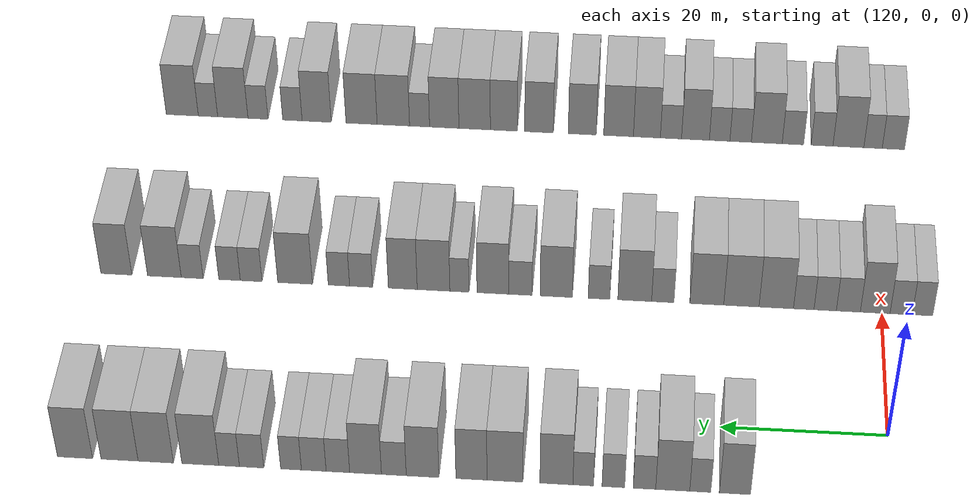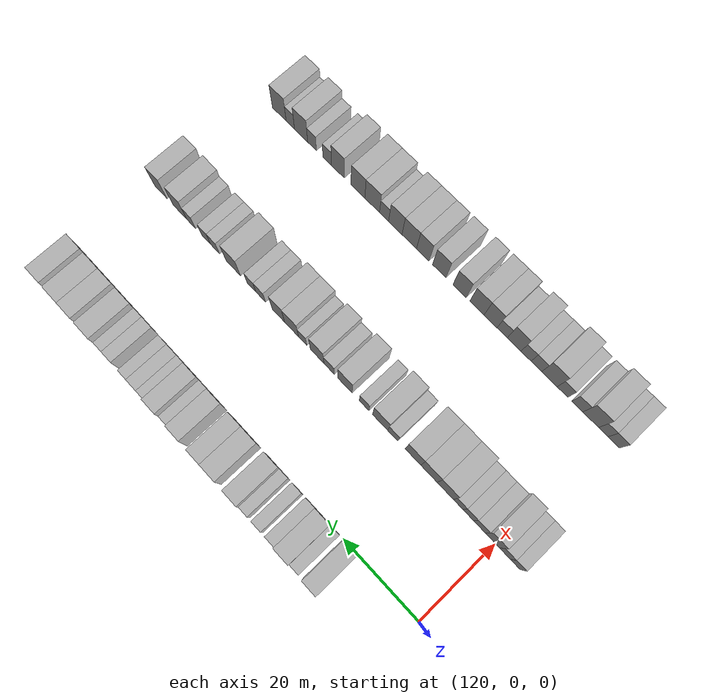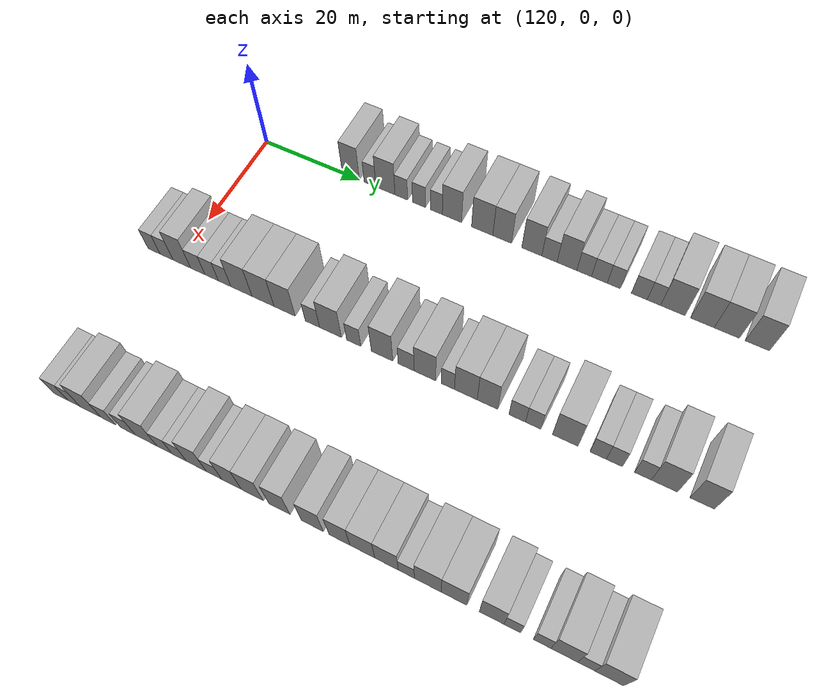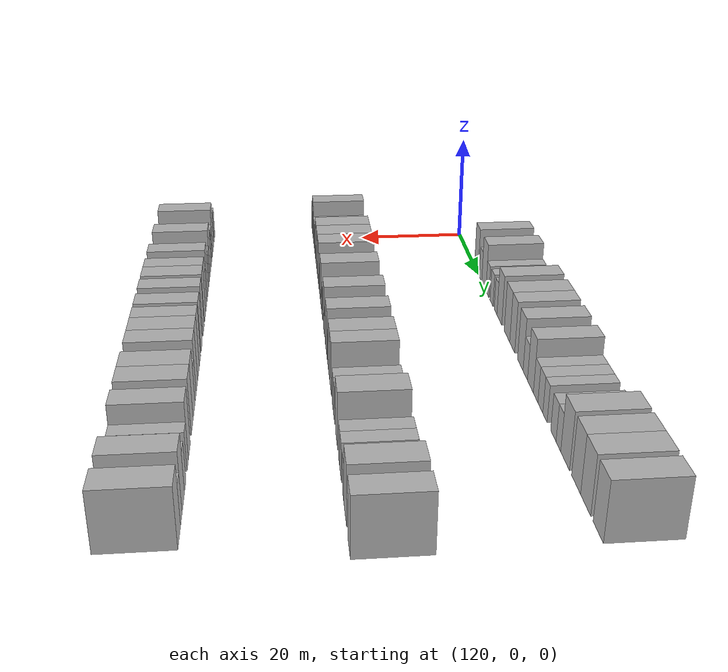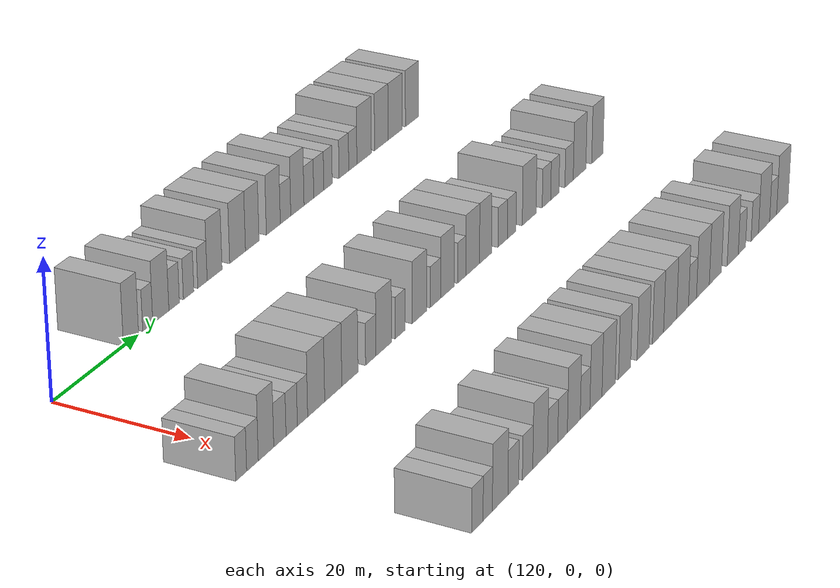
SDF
<sdf version="1.6">
 <world name="default">
  <model name="building_769">
   <static>1</static>
   <pose>115.0000 18.1627 0 0.000000 0.000000 0.000000</pose>
   <link name="link">
    <pose>0 0 4.50 0 0 0</pose>
    <collision name="collision"><geometry><box><size>10.0000 3.6325 9.0000</size></box></geometry></collision>
    <visual name="visual">
     <cast_shadows>0</cast_shadows>
     <geometry><box><size>10.0000 3.6325 9.0000</size></box></geometry>
     <material>
      <script>
       <uri>model://HANNAS_wall/materials/scripts</uri>
       <uri>model://HANNAS_wall/materials/textures</uri>
       <name>vrc/HANNAS_wall</name>
      </script>
     </material>
    </visual>
   </link>
  </model>
  <model name="building_770">
   <static>1</static>
   <pose>115.0000 22.2066 0 0.000000 0.000000 0.000000</pose>
   <link name="link">
    <pose>0 0 3.00 0 0 0</pose>
    <collision name="collision"><geometry><box><size>10.0000 2.4553 6.0000</size></box></geometry></collision>
    <visual name="visual">
     <cast_shadows>0</cast_shadows>
     <geometry><box><size>10.0000 2.4553 6.0000</size></box></geometry>
     <material>
      <script>
       <uri>model://HANNAS_wall/materials/scripts</uri>
       <uri>model://HANNAS_wall/materials/textures</uri>
       <name>vrc/HANNAS_wall</name>
      </script>
     </material>
    </visual>
   </link>
  </model>
  <model name="building_771">
   <static>1</static>
   <pose>115.0000 25.4216 0 0.000000 0.000000 0.000000</pose>
   <link name="link">
    <pose>0 0 4.50 0 0 0</pose>
    <collision name="collision"><geometry><box><size>10.0000 3.9746 9.0000</size></box></geometry></collision>
    <visual name="visual">
     <cast_shadows>0</cast_shadows>
     <geometry><box><size>10.0000 3.9746 9.0000</size></box></geometry>
     <material>
      <script>
       <uri>model://HANNAS_wall/materials/scripts</uri>
       <uri>model://HANNAS_wall/materials/textures</uri>
       <name>vrc/HANNAS_wall</name>
      </script>
     </material>
    </visual>
   </link>
  </model>
  <model name="building_772">
   <static>1</static>
   <pose>115.0000 28.7210 0 0.000000 0.000000 0.000000</pose>
   <link name="link">
    <pose>0 0 3.00 0 0 0</pose>
    <collision name="collision"><geometry><box><size>10.0000 2.6242 6.0000</size></box></geometry></collision>
    <visual name="visual">
     <cast_shadows>0</cast_shadows>
     <geometry><box><size>10.0000 2.6242 6.0000</size></box></geometry>
     <material>
      <script>
       <uri>model://HANNAS_wall/materials/scripts</uri>
       <uri>model://HANNAS_wall/materials/textures</uri>
       <name>vrc/HANNAS_wall</name>
      </script>
     </material>
    </visual>
   </link>
  </model>
  <model name="building_773">
   <static>1</static>
   <pose>115.0000 32.3608 0 0.000000 0.000000 0.000000</pose>
   <link name="link">
    <pose>0 0 3.00 0 0 0</pose>
    <collision name="collision"><geometry><box><size>10.0000 2.6553 6.0000</size></box></geometry></collision>
    <visual name="visual">
     <cast_shadows>0</cast_shadows>
     <geometry><box><size>10.0000 2.6553 6.0000</size></box></geometry>
     <material>
      <script>
       <uri>model://HANNAS_wall/materials/scripts</uri>
       <uri>model://HANNAS_wall/materials/textures</uri>
       <name>vrc/HANNAS_wall</name>
      </script>
     </material>
    </visual>
   </link>
  </model>
  <model name="building_774">
   <static>1</static>
   <pose>115.0000 35.8933 0 0.000000 0.000000 0.000000</pose>
   <link name="link">
    <pose>0 0 3.00 0 0 0</pose>
    <collision name="collision"><geometry><box><size>10.0000 2.4097 6.0000</size></box></geometry></collision>
    <visual name="visual">
     <cast_shadows>0</cast_shadows>
     <geometry><box><size>10.0000 2.4097 6.0000</size></box></geometry>
     <material>
      <script>
       <uri>model://HANNAS_wall/materials/scripts</uri>
       <uri>model://HANNAS_wall/materials/textures</uri>
       <name>vrc/HANNAS_wall</name>
      </script>
     </material>
    </visual>
   </link>
  </model>
  <model name="building_775">
   <static>1</static>
   <pose>115.0000 39.0389 0 0.000000 0.000000 0.000000</pose>
   <link name="link">
    <pose>0 0 4.50 0 0 0</pose>
    <collision name="collision"><geometry><box><size>10.0000 3.8815 9.0000</size></box></geometry></collision>
    <visual name="visual">
     <cast_shadows>0</cast_shadows>
     <geometry><box><size>10.0000 3.8815 9.0000</size></box></geometry>
     <material>
      <script>
       <uri>model://HANNAS_wall/materials/scripts</uri>
       <uri>model://HANNAS_wall/materials/textures</uri>
       <name>vrc/HANNAS_wall</name>
      </script>
     </material>
    </visual>
   </link>
  </model>
  <model name="building_776">
   <static>1</static>
   <pose>115.0000 45.0874 0 0.000000 0.000000 0.000000</pose>
   <link name="link">
    <pose>0 0 4.50 0 0 0</pose>
    <collision name="collision"><geometry><box><size>10.0000 4.2157 9.0000</size></box></geometry></collision>
    <visual name="visual">
     <cast_shadows>0</cast_shadows>
     <geometry><box><size>10.0000 4.2157 9.0000</size></box></geometry>
     <material>
      <script>
       <uri>model://HANNAS_wall/materials/scripts</uri>
       <uri>model://HANNAS_wall/materials/textures</uri>
       <name>vrc/HANNAS_wall</name>
      </script>
     </material>
    </visual>
   </link>
  </model>
  <model name="building_777">
   <static>1</static>
   <pose>115.0000 49.0259 0 0.000000 0.000000 0.000000</pose>
   <link name="link">
    <pose>0 0 4.50 0 0 0</pose>
    <collision name="collision"><geometry><box><size>10.0000 3.6612 9.0000</size></box></geometry></collision>
    <visual name="visual">
     <cast_shadows>0</cast_shadows>
     <geometry><box><size>10.0000 3.6612 9.0000</size></box></geometry>
     <material>
      <script>
       <uri>model://HANNAS_wall/materials/scripts</uri>
       <uri>model://HANNAS_wall/materials/textures</uri>
       <name>vrc/HANNAS_wall</name>
      </script>
     </material>
    </visual>
   </link>
  </model>
  <model name="building_778">
   <static>1</static>
   <pose>115.0000 54.7851 0 0.000000 0.000000 0.000000</pose>
   <link name="link">
    <pose>0 0 4.50 0 0 0</pose>
    <collision name="collision"><geometry><box><size>10.0000 3.8573 9.0000</size></box></geometry></collision>
    <visual name="visual">
     <cast_shadows>0</cast_shadows>
     <geometry><box><size>10.0000 3.8573 9.0000</size></box></geometry>
     <material>
      <script>
       <uri>model://HANNAS_wall/materials/scripts</uri>
       <uri>model://HANNAS_wall/materials/textures</uri>
       <name>vrc/HANNAS_wall</name>
      </script>
     </material>
    </visual>
   </link>
  </model>
  <model name="building_779">
   <static>1</static>
   <pose>115.0000 58.1775 0 0.000000 0.000000 0.000000</pose>
   <link name="link">
    <pose>0 0 3.00 0 0 0</pose>
    <collision name="collision"><geometry><box><size>10.0000 2.9275 6.0000</size></box></geometry></collision>
    <visual name="visual">
     <cast_shadows>0</cast_shadows>
     <geometry><box><size>10.0000 2.9275 6.0000</size></box></geometry>
     <material>
      <script>
       <uri>model://HANNAS_wall/materials/scripts</uri>
       <uri>model://HANNAS_wall/materials/textures</uri>
       <name>vrc/HANNAS_wall</name>
      </script>
     </material>
    </visual>
   </link>
  </model>
  <model name="building_780">
   <static>1</static>
   <pose>115.0000 61.5200 0 0.000000 0.000000 0.000000</pose>
   <link name="link">
    <pose>0 0 4.50 0 0 0</pose>
    <collision name="collision"><geometry><box><size>10.0000 3.7576 9.0000</size></box></geometry></collision>
    <visual name="visual">
     <cast_shadows>0</cast_shadows>
     <geometry><box><size>10.0000 3.7576 9.0000</size></box></geometry>
     <material>
      <script>
       <uri>model://HANNAS_wall/materials/scripts</uri>
       <uri>model://HANNAS_wall/materials/textures</uri>
       <name>vrc/HANNAS_wall</name>
      </script>
     </material>
    </visual>
   </link>
  </model>
  <model name="building_781">
   <static>1</static>
   <pose>115.0000 64.7912 0 0.000000 0.000000 0.000000</pose>
   <link name="link">
    <pose>0 0 3.00 0 0 0</pose>
    <collision name="collision"><geometry><box><size>10.0000 2.7848 6.0000</size></box></geometry></collision>
    <visual name="visual">
     <cast_shadows>0</cast_shadows>
     <geometry><box><size>10.0000 2.7848 6.0000</size></box></geometry>
     <material>
      <script>
       <uri>model://HANNAS_wall/materials/scripts</uri>
       <uri>model://HANNAS_wall/materials/textures</uri>
       <name>vrc/HANNAS_wall</name>
      </script>
     </material>
    </visual>
   </link>
  </model>
  <model name="building_782">
   <static>1</static>
   <pose>115.0000 67.6475 0 0.000000 0.000000 0.000000</pose>
   <link name="link">
    <pose>0 0 3.00 0 0 0</pose>
    <collision name="collision"><geometry><box><size>10.0000 2.9278 6.0000</size></box></geometry></collision>
    <visual name="visual">
     <cast_shadows>0</cast_shadows>
     <geometry><box><size>10.0000 2.9278 6.0000</size></box></geometry>
     <material>
      <script>
       <uri>model://HANNAS_wall/materials/scripts</uri>
       <uri>model://HANNAS_wall/materials/textures</uri>
       <name>vrc/HANNAS_wall</name>
      </script>
     </material>
    </visual>
   </link>
  </model>
  <model name="building_783">
   <static>1</static>
   <pose>115.0000 70.3425 0 0.000000 0.000000 0.000000</pose>
   <link name="link">
    <pose>0 0 3.00 0 0 0</pose>
    <collision name="collision"><geometry><box><size>10.0000 2.4622 6.0000</size></box></geometry></collision>
    <visual name="visual">
     <cast_shadows>0</cast_shadows>
     <geometry><box><size>10.0000 2.4622 6.0000</size></box></geometry>
     <material>
      <script>
       <uri>model://HANNAS_wall/materials/scripts</uri>
       <uri>model://HANNAS_wall/materials/textures</uri>
       <name>vrc/HANNAS_wall</name>
      </script>
     </material>
    </visual>
   </link>
  </model>
  <model name="building_784">
   <static>1</static>
   <pose>115.0000 75.0218 0 0.000000 0.000000 0.000000</pose>
   <link name="link">
    <pose>0 0 3.00 0 0 0</pose>
    <collision name="collision"><geometry><box><size>10.0000 2.8963 6.0000</size></box></geometry></collision>
    <visual name="visual">
     <cast_shadows>0</cast_shadows>
     <geometry><box><size>10.0000 2.8963 6.0000</size></box></geometry>
     <material>
      <script>
       <uri>model://HANNAS_wall/materials/scripts</uri>
       <uri>model://HANNAS_wall/materials/textures</uri>
       <name>vrc/HANNAS_wall</name>
      </script>
     </material>
    </visual>
   </link>
  </model>
  <model name="building_785">
   <static>1</static>
   <pose>115.0000 77.6968 0 0.000000 0.000000 0.000000</pose>
   <link name="link">
    <pose>0 0 3.00 0 0 0</pose>
    <collision name="collision"><geometry><box><size>10.0000 2.4537 6.0000</size></box></geometry></collision>
    <visual name="visual">
     <cast_shadows>0</cast_shadows>
     <geometry><box><size>10.0000 2.4537 6.0000</size></box></geometry>
     <material>
      <script>
       <uri>model://HANNAS_wall/materials/scripts</uri>
       <uri>model://HANNAS_wall/materials/textures</uri>
       <name>vrc/HANNAS_wall</name>
      </script>
     </material>
    </visual>
   </link>
  </model>
  <model name="building_786">
   <static>1</static>
   <pose>115.0000 81.1252 0 0.000000 0.000000 0.000000</pose>
   <link name="link">
    <pose>0 0 4.50 0 0 0</pose>
    <collision name="collision"><geometry><box><size>10.0000 4.4030 9.0000</size></box></geometry></collision>
    <visual name="visual">
     <cast_shadows>0</cast_shadows>
     <geometry><box><size>10.0000 4.4030 9.0000</size></box></geometry>
     <material>
      <script>
       <uri>model://HANNAS_wall/materials/scripts</uri>
       <uri>model://HANNAS_wall/materials/textures</uri>
       <name>vrc/HANNAS_wall</name>
      </script>
     </material>
    </visual>
   </link>
  </model>
  <model name="building_787">
   <static>1</static>
   <pose>115.0000 86.4268 0 0.000000 0.000000 0.000000</pose>
   <link name="link">
    <pose>0 0 4.50 0 0 0</pose>
    <collision name="collision"><geometry><box><size>10.0000 4.2002 9.0000</size></box></geometry></collision>
    <visual name="visual">
     <cast_shadows>0</cast_shadows>
     <geometry><box><size>10.0000 4.2002 9.0000</size></box></geometry>
     <material>
      <script>
       <uri>model://HANNAS_wall/materials/scripts</uri>
       <uri>model://HANNAS_wall/materials/textures</uri>
       <name>vrc/HANNAS_wall</name>
      </script>
     </material>
    </visual>
   </link>
  </model>
  <model name="building_788">
   <static>1</static>
   <pose>115.0000 90.7463 0 0.000000 0.000000 0.000000</pose>
   <link name="link">
    <pose>0 0 4.50 0 0 0</pose>
    <collision name="collision"><geometry><box><size>10.0000 4.4389 9.0000</size></box></geometry></collision>
    <visual name="visual">
     <cast_shadows>0</cast_shadows>
     <geometry><box><size>10.0000 4.4389 9.0000</size></box></geometry>
     <material>
      <script>
       <uri>model://HANNAS_wall/materials/scripts</uri>
       <uri>model://HANNAS_wall/materials/textures</uri>
       <name>vrc/HANNAS_wall</name>
      </script>
     </material>
    </visual>
   </link>
  </model>
  <model name="building_789">
   <static>1</static>
   <pose>115.0000 96.0690 0 0.000000 0.000000 0.000000</pose>
   <link name="link">
    <pose>0 0 4.50 0 0 0</pose>
    <collision name="collision"><geometry><box><size>10.0000 4.2064 9.0000</size></box></geometry></collision>
    <visual name="visual">
     <cast_shadows>0</cast_shadows>
     <geometry><box><size>10.0000 4.2064 9.0000</size></box></geometry>
     <material>
      <script>
       <uri>model://HANNAS_wall/materials/scripts</uri>
       <uri>model://HANNAS_wall/materials/textures</uri>
       <name>vrc/HANNAS_wall</name>
      </script>
     </material>
    </visual>
   </link>
  </model>
  <model name="building_988">
   <static>1</static>
   <pose>145.0000 -5.0120 0 0.000000 0.000000 0.000000</pose>
   <link name="link">
    <pose>0 0 3.00 0 0 0</pose>
    <collision name="collision"><geometry><box><size>10.0000 2.5495 6.0000</size></box></geometry></collision>
    <visual name="visual">
     <cast_shadows>0</cast_shadows>
     <geometry><box><size>10.0000 2.5495 6.0000</size></box></geometry>
     <material>
      <script>
       <uri>model://HANNAS_wall/materials/scripts</uri>
       <uri>model://HANNAS_wall/materials/textures</uri>
       <name>vrc/HANNAS_wall</name>
      </script>
     </material>
    </visual>
   </link>
  </model>
  <model name="building_989">
   <static>1</static>
   <pose>145.0000 -2.3616 0 0.000000 0.000000 0.000000</pose>
   <link name="link">
    <pose>0 0 3.00 0 0 0</pose>
    <collision name="collision"><geometry><box><size>10.0000 2.7514 6.0000</size></box></geometry></collision>
    <visual name="visual">
     <cast_shadows>0</cast_shadows>
     <geometry><box><size>10.0000 2.7514 6.0000</size></box></geometry>
     <material>
      <script>
       <uri>model://HANNAS_wall/materials/scripts</uri>
       <uri>model://HANNAS_wall/materials/textures</uri>
       <name>vrc/HANNAS_wall</name>
      </script>
     </material>
    </visual>
   </link>
  </model>
  <model name="building_990">
   <static>1</static>
   <pose>145.0000 0.8616 0 0.000000 0.000000 0.000000</pose>
   <link name="link">
    <pose>0 0 4.50 0 0 0</pose>
    <collision name="collision"><geometry><box><size>10.0000 3.6948 9.0000</size></box></geometry></collision>
    <visual name="visual">
     <cast_shadows>0</cast_shadows>
     <geometry><box><size>10.0000 3.6948 9.0000</size></box></geometry>
     <material>
      <script>
       <uri>model://HANNAS_wall/materials/scripts</uri>
       <uri>model://HANNAS_wall/materials/textures</uri>
       <name>vrc/HANNAS_wall</name>
      </script>
     </material>
    </visual>
   </link>
  </model>
  <model name="building_991">
   <static>1</static>
   <pose>145.0000 4.2015 0 0.000000 0.000000 0.000000</pose>
   <link name="link">
    <pose>0 0 3.00 0 0 0</pose>
    <collision name="collision"><geometry><box><size>10.0000 2.9850 6.0000</size></box></geometry></collision>
    <visual name="visual">
     <cast_shadows>0</cast_shadows>
     <geometry><box><size>10.0000 2.9850 6.0000</size></box></geometry>
     <material>
      <script>
       <uri>model://HANNAS_wall/materials/scripts</uri>
       <uri>model://HANNAS_wall/materials/textures</uri>
       <name>vrc/HANNAS_wall</name>
      </script>
     </material>
    </visual>
   </link>
  </model>
  <model name="building_992">
   <static>1</static>
   <pose>145.0000 7.0868 0 0.000000 0.000000 0.000000</pose>
   <link name="link">
    <pose>0 0 3.00 0 0 0</pose>
    <collision name="collision"><geometry><box><size>10.0000 2.7858 6.0000</size></box></geometry></collision>
    <visual name="visual">
     <cast_shadows>0</cast_shadows>
     <geometry><box><size>10.0000 2.7858 6.0000</size></box></geometry>
     <material>
      <script>
       <uri>model://HANNAS_wall/materials/scripts</uri>
       <uri>model://HANNAS_wall/materials/textures</uri>
       <name>vrc/HANNAS_wall</name>
      </script>
     </material>
    </visual>
   </link>
  </model>
  <model name="building_993">
   <static>1</static>
   <pose>145.0000 9.7575 0 0.000000 0.000000 0.000000</pose>
   <link name="link">
    <pose>0 0 3.00 0 0 0</pose>
    <collision name="collision"><geometry><box><size>10.0000 2.5555 6.0000</size></box></geometry></collision>
    <visual name="visual">
     <cast_shadows>0</cast_shadows>
     <geometry><box><size>10.0000 2.5555 6.0000</size></box></geometry>
     <material>
      <script>
       <uri>model://HANNAS_wall/materials/scripts</uri>
       <uri>model://HANNAS_wall/materials/textures</uri>
       <name>vrc/HANNAS_wall</name>
      </script>
     </material>
    </visual>
   </link>
  </model>
  <model name="building_994">
   <static>1</static>
   <pose>145.0000 13.1866 0 0.000000 0.000000 0.000000</pose>
   <link name="link">
    <pose>0 0 4.50 0 0 0</pose>
    <collision name="collision"><geometry><box><size>10.0000 4.3028 9.0000</size></box></geometry></collision>
    <visual name="visual">
     <cast_shadows>0</cast_shadows>
     <geometry><box><size>10.0000 4.3028 9.0000</size></box></geometry>
     <material>
      <script>
       <uri>model://HANNAS_wall/materials/scripts</uri>
       <uri>model://HANNAS_wall/materials/textures</uri>
       <name>vrc/HANNAS_wall</name>
      </script>
     </material>
    </visual>
   </link>
  </model>
  <model name="building_995">
   <static>1</static>
   <pose>145.0000 17.5423 0 0.000000 0.000000 0.000000</pose>
   <link name="link">
    <pose>0 0 4.50 0 0 0</pose>
    <collision name="collision"><geometry><box><size>10.0000 4.4086 9.0000</size></box></geometry></collision>
    <visual name="visual">
     <cast_shadows>0</cast_shadows>
     <geometry><box><size>10.0000 4.4086 9.0000</size></box></geometry>
     <material>
      <script>
       <uri>model://HANNAS_wall/materials/scripts</uri>
       <uri>model://HANNAS_wall/materials/textures</uri>
       <name>vrc/HANNAS_wall</name>
      </script>
     </material>
    </visual>
   </link>
  </model>
  <model name="building_996">
   <static>1</static>
   <pose>145.0000 21.8609 0 0.000000 0.000000 0.000000</pose>
   <link name="link">
    <pose>0 0 4.50 0 0 0</pose>
    <collision name="collision"><geometry><box><size>10.0000 4.2285 9.0000</size></box></geometry></collision>
    <visual name="visual">
     <cast_shadows>0</cast_shadows>
     <geometry><box><size>10.0000 4.2285 9.0000</size></box></geometry>
     <material>
      <script>
       <uri>model://HANNAS_wall/materials/scripts</uri>
       <uri>model://HANNAS_wall/materials/textures</uri>
       <name>vrc/HANNAS_wall</name>
      </script>
     </material>
    </visual>
   </link>
  </model>
  <model name="building_997">
   <static>1</static>
   <pose>145.0000 27.3735 0 0.000000 0.000000 0.000000</pose>
   <link name="link">
    <pose>0 0 3.00 0 0 0</pose>
    <collision name="collision"><geometry><box><size>10.0000 2.7969 6.0000</size></box></geometry></collision>
    <visual name="visual">
     <cast_shadows>0</cast_shadows>
     <geometry><box><size>10.0000 2.7969 6.0000</size></box></geometry>
     <material>
      <script>
       <uri>model://HANNAS_wall/materials/scripts</uri>
       <uri>model://HANNAS_wall/materials/textures</uri>
       <name>vrc/HANNAS_wall</name>
      </script>
     </material>
    </visual>
   </link>
  </model>
  <model name="building_998">
   <static>1</static>
   <pose>145.0000 30.8922 0 0.000000 0.000000 0.000000</pose>
   <link name="link">
    <pose>0 0 4.50 0 0 0</pose>
    <collision name="collision"><geometry><box><size>10.0000 4.2404 9.0000</size></box></geometry></collision>
    <visual name="visual">
     <cast_shadows>0</cast_shadows>
     <geometry><box><size>10.0000 4.2404 9.0000</size></box></geometry>
     <material>
      <script>
       <uri>model://HANNAS_wall/materials/scripts</uri>
       <uri>model://HANNAS_wall/materials/textures</uri>
       <name>vrc/HANNAS_wall</name>
      </script>
     </material>
    </visual>
   </link>
  </model>
  <model name="building_999">
   <static>1</static>
   <pose>145.0000 35.3696 0 0.000000 0.000000 0.000000</pose>
   <link name="link">
    <pose>0 0 3.00 0 0 0</pose>
    <collision name="collision"><geometry><box><size>10.0000 2.7144 6.0000</size></box></geometry></collision>
    <visual name="visual">
     <cast_shadows>0</cast_shadows>
     <geometry><box><size>10.0000 2.7144 6.0000</size></box></geometry>
     <material>
      <script>
       <uri>model://HANNAS_wall/materials/scripts</uri>
       <uri>model://HANNAS_wall/materials/textures</uri>
       <name>vrc/HANNAS_wall</name>
      </script>
     </material>
    </visual>
   </link>
  </model>
  <model name="building_1000">
   <static>1</static>
   <pose>145.0000 40.7565 0 0.000000 0.000000 0.000000</pose>
   <link name="link">
    <pose>0 0 4.50 0 0 0</pose>
    <collision name="collision"><geometry><box><size>10.0000 4.0594 9.0000</size></box></geometry></collision>
    <visual name="visual">
     <cast_shadows>0</cast_shadows>
     <geometry><box><size>10.0000 4.0594 9.0000</size></box></geometry>
     <material>
      <script>
       <uri>model://HANNAS_wall/materials/scripts</uri>
       <uri>model://HANNAS_wall/materials/textures</uri>
       <name>vrc/HANNAS_wall</name>
      </script>
     </material>
    </visual>
   </link>
  </model>
  <model name="building_1001">
   <static>1</static>
   <pose>145.0000 45.2806 0 0.000000 0.000000 0.000000</pose>
   <link name="link">
    <pose>0 0 3.00 0 0 0</pose>
    <collision name="collision"><geometry><box><size>10.0000 2.9886 6.0000</size></box></geometry></collision>
    <visual name="visual">
     <cast_shadows>0</cast_shadows>
     <geometry><box><size>10.0000 2.9886 6.0000</size></box></geometry>
     <material>
      <script>
       <uri>model://HANNAS_wall/materials/scripts</uri>
       <uri>model://HANNAS_wall/materials/textures</uri>
       <name>vrc/HANNAS_wall</name>
      </script>
     </material>
    </visual>
   </link>
  </model>
  <model name="building_1002">
   <static>1</static>
   <pose>145.0000 48.7623 0 0.000000 0.000000 0.000000</pose>
   <link name="link">
    <pose>0 0 4.50 0 0 0</pose>
    <collision name="collision"><geometry><box><size>10.0000 3.9747 9.0000</size></box></geometry></collision>
    <visual name="visual">
     <cast_shadows>0</cast_shadows>
     <geometry><box><size>10.0000 3.9747 9.0000</size></box></geometry>
     <material>
      <script>
       <uri>model://HANNAS_wall/materials/scripts</uri>
       <uri>model://HANNAS_wall/materials/textures</uri>
       <name>vrc/HANNAS_wall</name>
      </script>
     </material>
    </visual>
   </link>
  </model>
  <model name="building_1003">
   <static>1</static>
   <pose>145.0000 52.9579 0 0.000000 0.000000 0.000000</pose>
   <link name="link">
    <pose>0 0 3.00 0 0 0</pose>
    <collision name="collision"><geometry><box><size>10.0000 2.4165 6.0000</size></box></geometry></collision>
    <visual name="visual">
     <cast_shadows>0</cast_shadows>
     <geometry><box><size>10.0000 2.4165 6.0000</size></box></geometry>
     <material>
      <script>
       <uri>model://HANNAS_wall/materials/scripts</uri>
       <uri>model://HANNAS_wall/materials/textures</uri>
       <name>vrc/HANNAS_wall</name>
      </script>
     </material>
    </visual>
   </link>
  </model>
  <model name="building_1004">
   <static>1</static>
   <pose>145.0000 56.2292 0 0.000000 0.000000 0.000000</pose>
   <link name="link">
    <pose>0 0 4.50 0 0 0</pose>
    <collision name="collision"><geometry><box><size>10.0000 4.1262 9.0000</size></box></geometry></collision>
    <visual name="visual">
     <cast_shadows>0</cast_shadows>
     <geometry><box><size>10.0000 4.1262 9.0000</size></box></geometry>
     <material>
      <script>
       <uri>model://HANNAS_wall/materials/scripts</uri>
       <uri>model://HANNAS_wall/materials/textures</uri>
       <name>vrc/HANNAS_wall</name>
      </script>
     </material>
    </visual>
   </link>
  </model>
  <model name="building_1005">
   <static>1</static>
   <pose>145.0000 60.1215 0 0.000000 0.000000 0.000000</pose>
   <link name="link">
    <pose>0 0 4.50 0 0 0</pose>
    <collision name="collision"><geometry><box><size>10.0000 3.6584 9.0000</size></box></geometry></collision>
    <visual name="visual">
     <cast_shadows>0</cast_shadows>
     <geometry><box><size>10.0000 3.6584 9.0000</size></box></geometry>
     <material>
      <script>
       <uri>model://HANNAS_wall/materials/scripts</uri>
       <uri>model://HANNAS_wall/materials/textures</uri>
       <name>vrc/HANNAS_wall</name>
      </script>
     </material>
    </visual>
   </link>
  </model>
  <model name="building_1006">
   <static>1</static>
   <pose>145.0000 65.4102 0 0.000000 0.000000 0.000000</pose>
   <link name="link">
    <pose>0 0 3.00 0 0 0</pose>
    <collision name="collision"><geometry><box><size>10.0000 2.9189 6.0000</size></box></geometry></collision>
    <visual name="visual">
     <cast_shadows>0</cast_shadows>
     <geometry><box><size>10.0000 2.9189 6.0000</size></box></geometry>
     <material>
      <script>
       <uri>model://HANNAS_wall/materials/scripts</uri>
       <uri>model://HANNAS_wall/materials/textures</uri>
       <name>vrc/HANNAS_wall</name>
      </script>
     </material>
    </visual>
   </link>
  </model>
  <model name="building_1007">
   <static>1</static>
   <pose>145.0000 68.2216 0 0.000000 0.000000 0.000000</pose>
   <link name="link">
    <pose>0 0 3.00 0 0 0</pose>
    <collision name="collision"><geometry><box><size>10.0000 2.7040 6.0000</size></box></geometry></collision>
    <visual name="visual">
     <cast_shadows>0</cast_shadows>
     <geometry><box><size>10.0000 2.7040 6.0000</size></box></geometry>
     <material>
      <script>
       <uri>model://HANNAS_wall/materials/scripts</uri>
       <uri>model://HANNAS_wall/materials/textures</uri>
       <name>vrc/HANNAS_wall</name>
      </script>
     </material>
    </visual>
   </link>
  </model>
  <model name="building_1008">
   <static>1</static>
   <pose>145.0000 73.7834 0 0.000000 0.000000 0.000000</pose>
   <link name="link">
    <pose>0 0 4.50 0 0 0</pose>
    <collision name="collision"><geometry><box><size>10.0000 4.4194 9.0000</size></box></geometry></collision>
    <visual name="visual">
     <cast_shadows>0</cast_shadows>
     <geometry><box><size>10.0000 4.4194 9.0000</size></box></geometry>
     <material>
      <script>
       <uri>model://HANNAS_wall/materials/scripts</uri>
       <uri>model://HANNAS_wall/materials/textures</uri>
       <name>vrc/HANNAS_wall</name>
      </script>
     </material>
    </visual>
   </link>
  </model>
  <model name="building_1009">
   <static>1</static>
   <pose>145.0000 79.3778 0 0.000000 0.000000 0.000000</pose>
   <link name="link">
    <pose>0 0 3.00 0 0 0</pose>
    <collision name="collision"><geometry><box><size>10.0000 2.7694 6.0000</size></box></geometry></collision>
    <visual name="visual">
     <cast_shadows>0</cast_shadows>
     <geometry><box><size>10.0000 2.7694 6.0000</size></box></geometry>
     <material>
      <script>
       <uri>model://HANNAS_wall/materials/scripts</uri>
       <uri>model://HANNAS_wall/materials/textures</uri>
       <name>vrc/HANNAS_wall</name>
      </script>
     </material>
    </visual>
   </link>
  </model>
  <model name="building_1010">
   <static>1</static>
   <pose>145.0000 82.1313 0 0.000000 0.000000 0.000000</pose>
   <link name="link">
    <pose>0 0 3.00 0 0 0</pose>
    <collision name="collision"><geometry><box><size>10.0000 2.7377 6.0000</size></box></geometry></collision>
    <visual name="visual">
     <cast_shadows>0</cast_shadows>
     <geometry><box><size>10.0000 2.7377 6.0000</size></box></geometry>
     <material>
      <script>
       <uri>model://HANNAS_wall/materials/scripts</uri>
       <uri>model://HANNAS_wall/materials/textures</uri>
       <name>vrc/HANNAS_wall</name>
      </script>
     </material>
    </visual>
   </link>
  </model>
  <model name="building_1011">
   <static>1</static>
   <pose>145.0000 86.8977 0 0.000000 0.000000 0.000000</pose>
   <link name="link">
    <pose>0 0 3.00 0 0 0</pose>
    <collision name="collision"><geometry><box><size>10.0000 2.7953 6.0000</size></box></geometry></collision>
    <visual name="visual">
     <cast_shadows>0</cast_shadows>
     <geometry><box><size>10.0000 2.7953 6.0000</size></box></geometry>
     <material>
      <script>
       <uri>model://HANNAS_wall/materials/scripts</uri>
       <uri>model://HANNAS_wall/materials/textures</uri>
       <name>vrc/HANNAS_wall</name>
      </script>
     </material>
    </visual>
   </link>
  </model>
  <model name="building_1012">
   <static>1</static>
   <pose>145.0000 90.4505 0 0.000000 0.000000 0.000000</pose>
   <link name="link">
    <pose>0 0 4.50 0 0 0</pose>
    <collision name="collision"><geometry><box><size>10.0000 4.3102 9.0000</size></box></geometry></collision>
    <visual name="visual">
     <cast_shadows>0</cast_shadows>
     <geometry><box><size>10.0000 4.3102 9.0000</size></box></geometry>
     <material>
      <script>
       <uri>model://HANNAS_wall/materials/scripts</uri>
       <uri>model://HANNAS_wall/materials/textures</uri>
       <name>vrc/HANNAS_wall</name>
      </script>
     </material>
    </visual>
   </link>
  </model>
  <model name="building_1013">
   <static>1</static>
   <pose>145.0000 96.5925 0 0.000000 0.000000 0.000000</pose>
   <link name="link">
    <pose>0 0 4.50 0 0 0</pose>
    <collision name="collision"><geometry><box><size>10.0000 3.9738 9.0000</size></box></geometry></collision>
    <visual name="visual">
     <cast_shadows>0</cast_shadows>
     <geometry><box><size>10.0000 3.9738 9.0000</size></box></geometry>
     <material>
      <script>
       <uri>model://HANNAS_wall/materials/scripts</uri>
       <uri>model://HANNAS_wall/materials/textures</uri>
       <name>vrc/HANNAS_wall</name>
      </script>
     </material>
    </visual>
   </link>
  </model>
  <model name="building_1214">
   <static>1</static>
   <pose>175.0000 -2.5469 0 0.000000 0.000000 0.000000</pose>
   <link name="link">
    <pose>0 0 3.00 0 0 0</pose>
    <collision name="collision"><geometry><box><size>10.0000 2.9612 6.0000</size></box></geometry></collision>
    <visual name="visual">
     <cast_shadows>0</cast_shadows>
     <geometry><box><size>10.0000 2.9612 6.0000</size></box></geometry>
     <material>
      <script>
       <uri>model://HANNAS_wall/materials/scripts</uri>
       <uri>model://HANNAS_wall/materials/textures</uri>
       <name>vrc/HANNAS_wall</name>
      </script>
     </material>
    </visual>
   </link>
  </model>
  <model name="building_1215">
   <static>1</static>
   <pose>175.0000 0.1506 0 0.000000 0.000000 0.000000</pose>
   <link name="link">
    <pose>0 0 3.00 0 0 0</pose>
    <collision name="collision"><geometry><box><size>10.0000 2.4338 6.0000</size></box></geometry></collision>
    <visual name="visual">
     <cast_shadows>0</cast_shadows>
     <geometry><box><size>10.0000 2.4338 6.0000</size></box></geometry>
     <material>
      <script>
       <uri>model://HANNAS_wall/materials/scripts</uri>
       <uri>model://HANNAS_wall/materials/textures</uri>
       <name>vrc/HANNAS_wall</name>
      </script>
     </material>
    </visual>
   </link>
  </model>
  <model name="building_1216">
   <static>1</static>
   <pose>175.0000 3.4219 0 0.000000 0.000000 0.000000</pose>
   <link name="link">
    <pose>0 0 4.50 0 0 0</pose>
    <collision name="collision"><geometry><box><size>10.0000 4.1088 9.0000</size></box></geometry></collision>
    <visual name="visual">
     <cast_shadows>0</cast_shadows>
     <geometry><box><size>10.0000 4.1088 9.0000</size></box></geometry>
     <material>
      <script>
       <uri>model://HANNAS_wall/materials/scripts</uri>
       <uri>model://HANNAS_wall/materials/textures</uri>
       <name>vrc/HANNAS_wall</name>
      </script>
     </material>
    </visual>
   </link>
  </model>
  <model name="building_1217">
   <static>1</static>
   <pose>175.0000 6.9252 0 0.000000 0.000000 0.000000</pose>
   <link name="link">
    <pose>0 0 3.00 0 0 0</pose>
    <collision name="collision"><geometry><box><size>10.0000 2.8978 6.0000</size></box></geometry></collision>
    <visual name="visual">
     <cast_shadows>0</cast_shadows>
     <geometry><box><size>10.0000 2.8978 6.0000</size></box></geometry>
     <material>
      <script>
       <uri>model://HANNAS_wall/materials/scripts</uri>
       <uri>model://HANNAS_wall/materials/textures</uri>
       <name>vrc/HANNAS_wall</name>
      </script>
     </material>
    </visual>
   </link>
  </model>
  <model name="building_1218">
   <static>1</static>
   <pose>175.0000 10.8027 0 0.000000 0.000000 0.000000</pose>
   <link name="link">
    <pose>0 0 3.00 0 0 0</pose>
    <collision name="collision"><geometry><box><size>10.0000 2.8571 6.0000</size></box></geometry></collision>
    <visual name="visual">
     <cast_shadows>0</cast_shadows>
     <geometry><box><size>10.0000 2.8571 6.0000</size></box></geometry>
     <material>
      <script>
       <uri>model://HANNAS_wall/materials/scripts</uri>
       <uri>model://HANNAS_wall/materials/textures</uri>
       <name>vrc/HANNAS_wall</name>
      </script>
     </material>
    </visual>
   </link>
  </model>
  <model name="building_1219">
   <static>1</static>
   <pose>175.0000 14.2866 0 0.000000 0.000000 0.000000</pose>
   <link name="link">
    <pose>0 0 4.50 0 0 0</pose>
    <collision name="collision"><geometry><box><size>10.0000 4.1108 9.0000</size></box></geometry></collision>
    <visual name="visual">
     <cast_shadows>0</cast_shadows>
     <geometry><box><size>10.0000 4.1108 9.0000</size></box></geometry>
     <material>
      <script>
       <uri>model://HANNAS_wall/materials/scripts</uri>
       <uri>model://HANNAS_wall/materials/textures</uri>
       <name>vrc/HANNAS_wall</name>
      </script>
     </material>
    </visual>
   </link>
  </model>
  <model name="building_1220">
   <static>1</static>
   <pose>175.0000 17.7716 0 0.000000 0.000000 0.000000</pose>
   <link name="link">
    <pose>0 0 3.00 0 0 0</pose>
    <collision name="collision"><geometry><box><size>10.0000 2.8591 6.0000</size></box></geometry></collision>
    <visual name="visual">
     <cast_shadows>0</cast_shadows>
     <geometry><box><size>10.0000 2.8591 6.0000</size></box></geometry>
     <material>
      <script>
       <uri>model://HANNAS_wall/materials/scripts</uri>
       <uri>model://HANNAS_wall/materials/textures</uri>
       <name>vrc/HANNAS_wall</name>
      </script>
     </material>
    </visual>
   </link>
  </model>
  <model name="building_1221">
   <static>1</static>
   <pose>175.0000 20.5713 0 0.000000 0.000000 0.000000</pose>
   <link name="link">
    <pose>0 0 3.00 0 0 0</pose>
    <collision name="collision"><geometry><box><size>10.0000 2.7402 6.0000</size></box></geometry></collision>
    <visual name="visual">
     <cast_shadows>0</cast_shadows>
     <geometry><box><size>10.0000 2.7402 6.0000</size></box></geometry>
     <material>
      <script>
       <uri>model://HANNAS_wall/materials/scripts</uri>
       <uri>model://HANNAS_wall/materials/textures</uri>
       <name>vrc/HANNAS_wall</name>
      </script>
     </material>
    </visual>
   </link>
  </model>
  <model name="building_1222">
   <static>1</static>
   <pose>175.0000 23.8022 0 0.000000 0.000000 0.000000</pose>
   <link name="link">
    <pose>0 0 4.50 0 0 0</pose>
    <collision name="collision"><geometry><box><size>10.0000 3.7216 9.0000</size></box></geometry></collision>
    <visual name="visual">
     <cast_shadows>0</cast_shadows>
     <geometry><box><size>10.0000 3.7216 9.0000</size></box></geometry>
     <material>
      <script>
       <uri>model://HANNAS_wall/materials/scripts</uri>
       <uri>model://HANNAS_wall/materials/textures</uri>
       <name>vrc/HANNAS_wall</name>
      </script>
     </material>
    </visual>
   </link>
  </model>
  <model name="building_1223">
   <static>1</static>
   <pose>175.0000 27.0771 0 0.000000 0.000000 0.000000</pose>
   <link name="link">
    <pose>0 0 3.00 0 0 0</pose>
    <collision name="collision"><geometry><box><size>10.0000 2.8282 6.0000</size></box></geometry></collision>
    <visual name="visual">
     <cast_shadows>0</cast_shadows>
     <geometry><box><size>10.0000 2.8282 6.0000</size></box></geometry>
     <material>
      <script>
       <uri>model://HANNAS_wall/materials/scripts</uri>
       <uri>model://HANNAS_wall/materials/textures</uri>
       <name>vrc/HANNAS_wall</name>
      </script>
     </material>
    </visual>
   </link>
  </model>
  <model name="building_1224">
   <static>1</static>
   <pose>175.0000 30.2925 0 0.000000 0.000000 0.000000</pose>
   <link name="link">
    <pose>0 0 4.50 0 0 0</pose>
    <collision name="collision"><geometry><box><size>10.0000 3.6025 9.0000</size></box></geometry></collision>
    <visual name="visual">
     <cast_shadows>0</cast_shadows>
     <geometry><box><size>10.0000 3.6025 9.0000</size></box></geometry>
     <material>
      <script>
       <uri>model://HANNAS_wall/materials/scripts</uri>
       <uri>model://HANNAS_wall/materials/textures</uri>
       <name>vrc/HANNAS_wall</name>
      </script>
     </material>
    </visual>
   </link>
  </model>
  <model name="building_1225">
   <static>1</static>
   <pose>175.0000 34.0874 0 0.000000 0.000000 0.000000</pose>
   <link name="link">
    <pose>0 0 4.50 0 0 0</pose>
    <collision name="collision"><geometry><box><size>10.0000 3.9874 9.0000</size></box></geometry></collision>
    <visual name="visual">
     <cast_shadows>0</cast_shadows>
     <geometry><box><size>10.0000 3.9874 9.0000</size></box></geometry>
     <material>
      <script>
       <uri>model://HANNAS_wall/materials/scripts</uri>
       <uri>model://HANNAS_wall/materials/textures</uri>
       <name>vrc/HANNAS_wall</name>
      </script>
     </material>
    </visual>
   </link>
  </model>
  <model name="building_1226">
   <static>1</static>
   <pose>175.0000 38.9572 0 0.000000 0.000000 0.000000</pose>
   <link name="link">
    <pose>0 0 4.50 0 0 0</pose>
    <collision name="collision"><geometry><box><size>10.0000 3.7521 9.0000</size></box></geometry></collision>
    <visual name="visual">
     <cast_shadows>0</cast_shadows>
     <geometry><box><size>10.0000 3.7521 9.0000</size></box></geometry>
     <material>
      <script>
       <uri>model://HANNAS_wall/materials/scripts</uri>
       <uri>model://HANNAS_wall/materials/textures</uri>
       <name>vrc/HANNAS_wall</name>
      </script>
     </material>
    </visual>
   </link>
  </model>
  <model name="building_1227">
   <static>1</static>
   <pose>175.0000 44.7641 0 0.000000 0.000000 0.000000</pose>
   <link name="link">
    <pose>0 0 4.50 0 0 0</pose>
    <collision name="collision"><geometry><box><size>10.0000 3.8616 9.0000</size></box></geometry></collision>
    <visual name="visual">
     <cast_shadows>0</cast_shadows>
     <geometry><box><size>10.0000 3.8616 9.0000</size></box></geometry>
     <material>
      <script>
       <uri>model://HANNAS_wall/materials/scripts</uri>
       <uri>model://HANNAS_wall/materials/textures</uri>
       <name>vrc/HANNAS_wall</name>
      </script>
     </material>
    </visual>
   </link>
  </model>
  <model name="building_1228">
   <static>1</static>
   <pose>175.0000 49.5035 0 0.000000 0.000000 0.000000</pose>
   <link name="link">
    <pose>0 0 4.50 0 0 0</pose>
    <collision name="collision"><geometry><box><size>10.0000 3.6172 9.0000</size></box></geometry></collision>
    <visual name="visual">
     <cast_shadows>0</cast_shadows>
     <geometry><box><size>10.0000 3.6172 9.0000</size></box></geometry>
     <material>
      <script>
       <uri>model://HANNAS_wall/materials/scripts</uri>
       <uri>model://HANNAS_wall/materials/textures</uri>
       <name>vrc/HANNAS_wall</name>
      </script>
     </material>
    </visual>
   </link>
  </model>
  <model name="building_1229">
   <static>1</static>
   <pose>175.0000 53.4320 0 0.000000 0.000000 0.000000</pose>
   <link name="link">
    <pose>0 0 4.50 0 0 0</pose>
    <collision name="collision"><geometry><box><size>10.0000 4.2399 9.0000</size></box></geometry></collision>
    <visual name="visual">
     <cast_shadows>0</cast_shadows>
     <geometry><box><size>10.0000 4.2399 9.0000</size></box></geometry>
     <material>
      <script>
       <uri>model://HANNAS_wall/materials/scripts</uri>
       <uri>model://HANNAS_wall/materials/textures</uri>
       <name>vrc/HANNAS_wall</name>
      </script>
     </material>
    </visual>
   </link>
  </model>
  <model name="building_1230">
   <static>1</static>
   <pose>175.0000 57.5309 0 0.000000 0.000000 0.000000</pose>
   <link name="link">
    <pose>0 0 4.50 0 0 0</pose>
    <collision name="collision"><geometry><box><size>10.0000 3.9579 9.0000</size></box></geometry></collision>
    <visual name="visual">
     <cast_shadows>0</cast_shadows>
     <geometry><box><size>10.0000 3.9579 9.0000</size></box></geometry>
     <material>
      <script>
       <uri>model://HANNAS_wall/materials/scripts</uri>
       <uri>model://HANNAS_wall/materials/textures</uri>
       <name>vrc/HANNAS_wall</name>
      </script>
     </material>
    </visual>
   </link>
  </model>
  <model name="building_1231">
   <static>1</static>
   <pose>175.0000 60.8611 0 0.000000 0.000000 0.000000</pose>
   <link name="link">
    <pose>0 0 3.00 0 0 0</pose>
    <collision name="collision"><geometry><box><size>10.0000 2.7026 6.0000</size></box></geometry></collision>
    <visual name="visual">
     <cast_shadows>0</cast_shadows>
     <geometry><box><size>10.0000 2.7026 6.0000</size></box></geometry>
     <material>
      <script>
       <uri>model://HANNAS_wall/materials/scripts</uri>
       <uri>model://HANNAS_wall/materials/textures</uri>
       <name>vrc/HANNAS_wall</name>
      </script>
     </material>
    </visual>
   </link>
  </model>
  <model name="building_1232">
   <static>1</static>
   <pose>175.0000 64.4038 0 0.000000 0.000000 0.000000</pose>
   <link name="link">
    <pose>0 0 4.50 0 0 0</pose>
    <collision name="collision"><geometry><box><size>10.0000 4.3827 9.0000</size></box></geometry></collision>
    <visual name="visual">
     <cast_shadows>0</cast_shadows>
     <geometry><box><size>10.0000 4.3827 9.0000</size></box></geometry>
     <material>
      <script>
       <uri>model://HANNAS_wall/materials/scripts</uri>
       <uri>model://HANNAS_wall/materials/textures</uri>
       <name>vrc/HANNAS_wall</name>
      </script>
     </material>
    </visual>
   </link>
  </model>
  <model name="building_1233">
   <static>1</static>
   <pose>175.0000 68.7026 0 0.000000 0.000000 0.000000</pose>
   <link name="link">
    <pose>0 0 4.50 0 0 0</pose>
    <collision name="collision"><geometry><box><size>10.0000 4.2149 9.0000</size></box></geometry></collision>
    <visual name="visual">
     <cast_shadows>0</cast_shadows>
     <geometry><box><size>10.0000 4.2149 9.0000</size></box></geometry>
     <material>
      <script>
       <uri>model://HANNAS_wall/materials/scripts</uri>
       <uri>model://HANNAS_wall/materials/textures</uri>
       <name>vrc/HANNAS_wall</name>
      </script>
     </material>
    </visual>
   </link>
  </model>
  <model name="building_1234">
   <static>1</static>
   <pose>175.0000 74.7862 0 0.000000 0.000000 0.000000</pose>
   <link name="link">
    <pose>0 0 4.50 0 0 0</pose>
    <collision name="collision"><geometry><box><size>10.0000 3.9524 9.0000</size></box></geometry></collision>
    <visual name="visual">
     <cast_shadows>0</cast_shadows>
     <geometry><box><size>10.0000 3.9524 9.0000</size></box></geometry>
     <material>
      <script>
       <uri>model://HANNAS_wall/materials/scripts</uri>
       <uri>model://HANNAS_wall/materials/textures</uri>
       <name>vrc/HANNAS_wall</name>
      </script>
     </material>
    </visual>
   </link>
  </model>
  <model name="building_1235">
   <static>1</static>
   <pose>175.0000 78.0774 0 0.000000 0.000000 0.000000</pose>
   <link name="link">
    <pose>0 0 3.00 0 0 0</pose>
    <collision name="collision"><geometry><box><size>10.0000 2.6301 6.0000</size></box></geometry></collision>
    <visual name="visual">
     <cast_shadows>0</cast_shadows>
     <geometry><box><size>10.0000 2.6301 6.0000</size></box></geometry>
     <material>
      <script>
       <uri>model://HANNAS_wall/materials/scripts</uri>
       <uri>model://HANNAS_wall/materials/textures</uri>
       <name>vrc/HANNAS_wall</name>
      </script>
     </material>
    </visual>
   </link>
  </model>
  <model name="building_1236">
   <static>1</static>
   <pose>175.0000 82.7563 0 0.000000 0.000000 0.000000</pose>
   <link name="link">
    <pose>0 0 3.00 0 0 0</pose>
    <collision name="collision"><geometry><box><size>10.0000 2.7277 6.0000</size></box></geometry></collision>
    <visual name="visual">
     <cast_shadows>0</cast_shadows>
     <geometry><box><size>10.0000 2.7277 6.0000</size></box></geometry>
     <material>
      <script>
       <uri>model://HANNAS_wall/materials/scripts</uri>
       <uri>model://HANNAS_wall/materials/textures</uri>
       <name>vrc/HANNAS_wall</name>
      </script>
     </material>
    </visual>
   </link>
  </model>
  <model name="building_1237">
   <static>1</static>
   <pose>175.0000 86.1805 0 0.000000 0.000000 0.000000</pose>
   <link name="link">
    <pose>0 0 4.50 0 0 0</pose>
    <collision name="collision"><geometry><box><size>10.0000 4.1206 9.0000</size></box></geometry></collision>
    <visual name="visual">
     <cast_shadows>0</cast_shadows>
     <geometry><box><size>10.0000 4.1206 9.0000</size></box></geometry>
     <material>
      <script>
       <uri>model://HANNAS_wall/materials/scripts</uri>
       <uri>model://HANNAS_wall/materials/textures</uri>
       <name>vrc/HANNAS_wall</name>
      </script>
     </material>
    </visual>
   </link>
  </model>
  <model name="building_1238">
   <static>1</static>
   <pose>175.0000 89.5573 0 0.000000 0.000000 0.000000</pose>
   <link name="link">
    <pose>0 0 3.00 0 0 0</pose>
    <collision name="collision"><geometry><box><size>10.0000 2.6331 6.0000</size></box></geometry></collision>
    <visual name="visual">
     <cast_shadows>0</cast_shadows>
     <geometry><box><size>10.0000 2.6331 6.0000</size></box></geometry>
     <material>
      <script>
       <uri>model://HANNAS_wall/materials/scripts</uri>
       <uri>model://HANNAS_wall/materials/textures</uri>
       <name>vrc/HANNAS_wall</name>
      </script>
     </material>
    </visual>
   </link>
  </model>
  <model name="building_1239">
   <static>1</static>
   <pose>175.0000 93.0588 0 0.000000 0.000000 0.000000</pose>
   <link name="link">
    <pose>0 0 4.50 0 0 0</pose>
    <collision name="collision"><geometry><box><size>10.0000 4.3700 9.0000</size></box></geometry></collision>
    <visual name="visual">
     <cast_shadows>0</cast_shadows>
     <geometry><box><size>10.0000 4.3700 9.0000</size></box></geometry>
     <material>
      <script>
       <uri>model://HANNAS_wall/materials/scripts</uri>
       <uri>model://HANNAS_wall/materials/textures</uri>
       <name>vrc/HANNAS_wall</name>
      </script>
     </material>
    </visual>
   </link>
  </model>
 </world>
</sdf>
